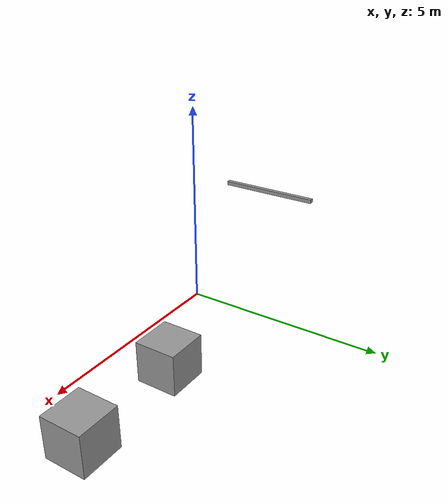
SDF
<?xml version='1.0'?>
<sdf version='1.6'>
  <model name='Race'>
    <link name='link_2'>
      <inertial>
        <mass>0.0902154</mass>
        <inertia>
          <ixx>0.104463</ixx>
          <ixy>0</ixy>
          <ixz>0</ixz>
          <iyy>0.000366354</iyy>
          <iyz>0</iyz>
          <izz>0.104503</izz>
        </inertia>
        <pose frame=''>0 0 0 0 -0 0</pose>
      </inertial>
      <pose frame=''>-8.76781 -2.88204 -0.5616 0 -0 0</pose>
      <visual name='visual'>
        <pose frame=''>0 0 0 0 -0 0</pose>
        <geometry>
          <box>
            <size>0.164283 3.72471 0.14745</size>
          </box>
        </geometry>
        <material>
          <lighting>1</lighting>
          <script>
            <uri>file://media/materials/scripts/gazebo.material</uri>
            <name>Gazebo/Grey</name>
          </script>
          <shader type='pixel'/>
        </material>
        <transparency>0</transparency>
        <cast_shadows>1</cast_shadows>
      </visual>
      <collision name='collision'>
        <laser_retro>0</laser_retro>
        <max_contacts>10</max_contacts>
        <pose frame=''>0 0 0 0 -0 0</pose>
        <geometry>
          <box>
            <size>0.164283 3.72471 0.14745</size>
          </box>
        </geometry>
        <surface>
          <friction>
            <ode>
              <mu>1</mu>
              <mu2>1</mu2>
              <fdir1>0 0 0</fdir1>
              <slip1>0</slip1>
              <slip2>0</slip2>
            </ode>
            <torsional>
              <coefficient>1</coefficient>
              <patch_radius>0</patch_radius>
              <surface_radius>0</surface_radius>
              <use_patch_radius>1</use_patch_radius>
              <ode>
                <slip>0</slip>
              </ode>
            </torsional>
          </friction>
          <bounce>
            <restitution_coefficient>0</restitution_coefficient>
            <threshold>1e+06</threshold>
          </bounce>
          <contact>
            <collide_without_contact>0</collide_without_contact>
            <collide_without_contact_bitmask>1</collide_without_contact_bitmask>
            <collide_bitmask>1</collide_bitmask>
            <ode>
              <soft_cfm>0</soft_cfm>
              <soft_erp>0.2</soft_erp>
              <kp>1e+13</kp>
              <kd>1</kd>
              <max_vel>0.01</max_vel>
              <min_depth>0</min_depth>
            </ode>
            <bullet>
              <split_impulse>1</split_impulse>
              <split_impulse_penetration_threshold>-0.01</split_impulse_penetration_threshold>
              <soft_cfm>0</soft_cfm>
              <soft_erp>0.2</soft_erp>
              <kp>1e+13</kp>
              <kd>1</kd>
            </bullet>
          </contact>
        </surface>
      </collision>
    </link>
    <link name='link_3'>
      <inertial>
        <mass>1</mass>
        <inertia>
          <ixx>0.166667</ixx>
          <ixy>0</ixy>
          <ixz>0</ixz>
          <iyy>0.166667</iyy>
          <iyz>0</iyz>
          <izz>0.166667</izz>
        </inertia>
      </inertial>
      <pose frame=''>3.00236 1.40734 0.2808 0 -0 0</pose>
      <visual name='visual'>
        <pose frame=''>0 0 0 0 -0 0</pose>
        <geometry>
          <box>
            <size>1 1 1</size>
          </box>
        </geometry>
        <material>
          <lighting>1</lighting>
          <script>
            <uri>file://media/materials/scripts/gazebo.material</uri>
            <name>Gazebo/Grey</name>
          </script>
          <shader type='pixel'/>
        </material>
        <transparency>0</transparency>
        <cast_shadows>1</cast_shadows>
      </visual>
      <collision name='collision'>
        <laser_retro>0</laser_retro>
        <max_contacts>10</max_contacts>
        <pose frame=''>0 0 0 0 -0 0</pose>
        <geometry>
          <box>
            <size>1 1 1</size>
          </box>
        </geometry>
        <surface>
          <friction>
            <ode>
              <mu>1</mu>
              <mu2>1</mu2>
              <fdir1>0 0 0</fdir1>
              <slip1>0</slip1>
              <slip2>0</slip2>
            </ode>
            <torsional>
              <coefficient>1</coefficient>
              <patch_radius>0</patch_radius>
              <surface_radius>0</surface_radius>
              <use_patch_radius>1</use_patch_radius>
              <ode>
                <slip>0</slip>
              </ode>
            </torsional>
          </friction>
          <bounce>
            <restitution_coefficient>0</restitution_coefficient>
            <threshold>1e+06</threshold>
          </bounce>
          <contact>
            <collide_without_contact>0</collide_without_contact>
            <collide_without_contact_bitmask>1</collide_without_contact_bitmask>
            <collide_bitmask>1</collide_bitmask>
            <ode>
              <soft_cfm>0</soft_cfm>
              <soft_erp>0.2</soft_erp>
              <kp>1e+13</kp>
              <kd>1</kd>
              <max_vel>0.01</max_vel>
              <min_depth>0</min_depth>
            </ode>
            <bullet>
              <split_impulse>1</split_impulse>
              <split_impulse_penetration_threshold>-0.01</split_impulse_penetration_threshold>
              <soft_cfm>0</soft_cfm>
              <soft_erp>0.2</soft_erp>
              <kp>1e+13</kp>
              <kd>1</kd>
            </bullet>
          </contact>
        </surface>
      </collision>
    </link>
    <link name='link_3_clone'>
      <inertial>
        <mass>1</mass>
        <inertia>
          <ixx>0.166667</ixx>
          <ixy>0</ixy>
          <ixz>0</ixz>
          <iyy>0.166667</iyy>
          <iyz>0</iyz>
          <izz>0.166667</izz>
        </inertia>
      </inertial>
      <pose frame=''>5.76544 1.4747 0.2808 0 -0 0</pose>
      <visual name='visual'>
        <pose frame=''>0 0 0 0 -0 0</pose>
        <geometry>
          <box>
            <size>1 1 1</size>
          </box>
        </geometry>
        <material>
          <lighting>1</lighting>
          <script>
            <uri>file://media/materials/scripts/gazebo.material</uri>
            <name>Gazebo/Grey</name>
          </script>
          <shader type='pixel'/>
        </material>
        <transparency>0</transparency>
        <cast_shadows>1</cast_shadows>
      </visual>
      <collision name='collision'>
        <laser_retro>0</laser_retro>
        <max_contacts>10</max_contacts>
        <pose frame=''>0 0 0 0 -0 0</pose>
        <geometry>
          <box>
            <size>1 1 1</size>
          </box>
        </geometry>
        <surface>
          <friction>
            <ode>
              <mu>1</mu>
              <mu2>1</mu2>
              <fdir1>0 0 0</fdir1>
              <slip1>0</slip1>
              <slip2>0</slip2>
            </ode>
            <torsional>
              <coefficient>1</coefficient>
              <patch_radius>0</patch_radius>
              <surface_radius>0</surface_radius>
              <use_patch_radius>1</use_patch_radius>
              <ode>
                <slip>0</slip>
              </ode>
            </torsional>
          </friction>
          <bounce>
            <restitution_coefficient>0</restitution_coefficient>
            <threshold>1e+06</threshold>
          </bounce>
          <contact>
            <collide_without_contact>0</collide_without_contact>
            <collide_without_contact_bitmask>1</collide_without_contact_bitmask>
            <collide_bitmask>1</collide_bitmask>
            <ode>
              <soft_cfm>0</soft_cfm>
              <soft_erp>0.2</soft_erp>
              <kp>1e+13</kp>
              <kd>1</kd>
              <max_vel>0.01</max_vel>
              <min_depth>0</min_depth>
            </ode>
            <bullet>
              <split_impulse>1</split_impulse>
              <split_impulse_penetration_threshold>-0.01</split_impulse_penetration_threshold>
              <soft_cfm>0</soft_cfm>
              <soft_erp>0.2</soft_erp>
              <kp>1e+13</kp>
              <kd>1</kd>
            </bullet>
          </contact>
        </surface>
      </collision>
    </link>
    <static>0</static>
    <allow_auto_disable>1</allow_auto_disable>
  </model>
</sdf>
